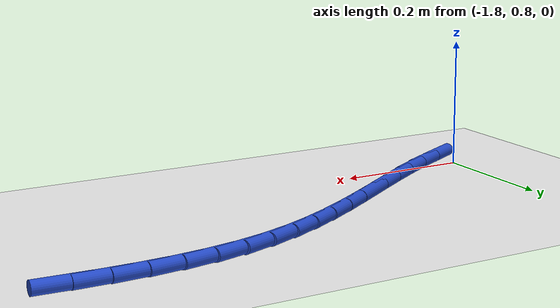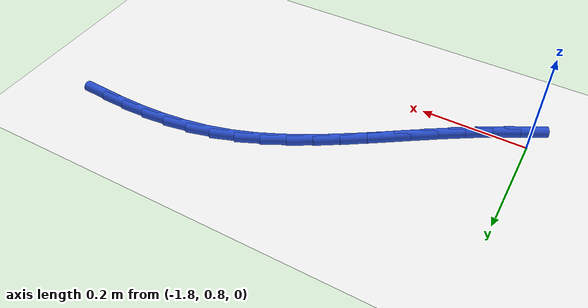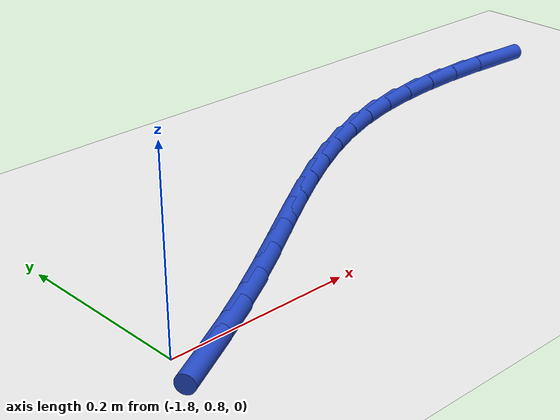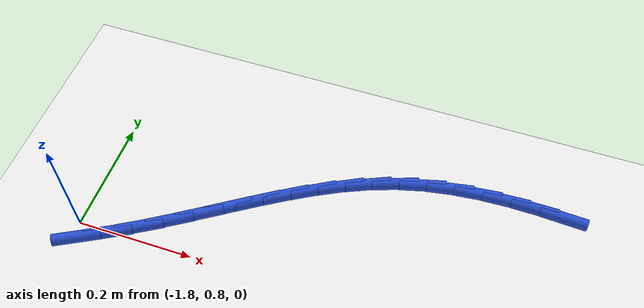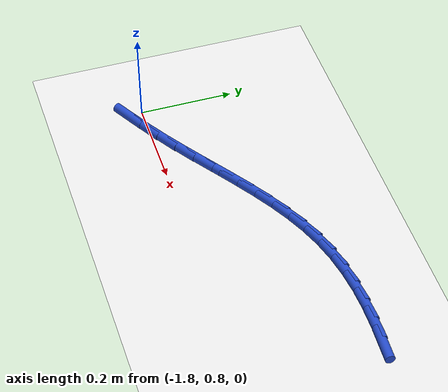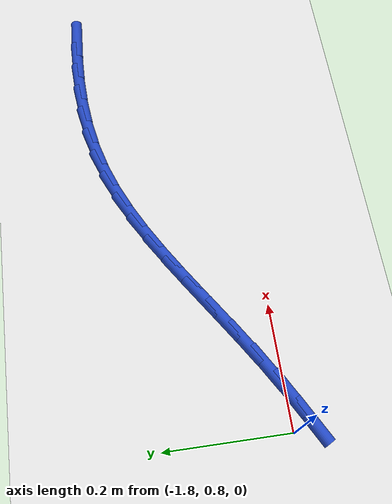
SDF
<sdf version="1.6">
 <world name="default">
  <model name="ground_plane">
   <static>1</static>
   <link name="link">
    <collision name="collision">
     <geometry><plane><normal>0 0 1</normal><size>100 100</size></plane></geometry>
     <surface><friction><ode><mu>100</mu><mu2>50</mu2></ode></friction></surface>
    </collision>
    <visual name="visual">
     <cast_shadows>0</cast_shadows>
     <geometry><plane><normal>0 0 1</normal><size>100 100</size></plane></geometry>
     <material>
      <script><uri>file://media/materials/scripts/gazebo.material</uri><name>Gazebo/WhiteGlow</name></script>
     </material>
    </visual>
   </link>
  </model>
  <model name="line">
   <link name="link_34">
    <pose>-1.040470278509321 1.062796352702786 0.01 0 1.57 -0.05168408826343095</pose>
    <collision name="collision">
     <geometry><cylinder><radius>0.01</radius><length>0.08</length></cylinder></geometry>
    </collision>
    <visual name="visual">
     <material>
      <script><name>Gazebo/Blue</name><uri>file://media/materials/scripts/gazebo.material</uri></script>
     </material>
     <geometry><cylinder><radius>0.01</radius><length>0.08</length></cylinder></geometry>
    </visual>
   </link>
   <link name="link_35">
    <pose>-1.0896073911539925 1.0653382232925686 0.01 0 1.57 -0.0069043084739173</pose>
    <collision name="collision">
     <geometry><cylinder><radius>0.01</radius><length>0.08</length></cylinder></geometry>
    </collision>
    <visual name="visual">
     <material>
      <script><name>Gazebo/Blue</name><uri>file://media/materials/scripts/gazebo.material</uri></script>
     </material>
     <geometry><cylinder><radius>0.01</radius><length>0.08</length></cylinder></geometry>
    </visual>
   </link>
   <link name="link_36">
    <pose>-1.1381539052245655 1.0656734087271 0.01 0 1.57 0.04650087163829302</pose>
    <collision name="collision">
     <geometry><cylinder><radius>0.01</radius><length>0.08</length></cylinder></geometry>
    </collision>
    <visual name="visual">
     <material>
      <script><name>Gazebo/Blue</name><uri>file://media/materials/scripts/gazebo.material</uri></script>
     </material>
     <geometry><cylinder><radius>0.01</radius><length>0.08</length></cylinder></geometry>
    </visual>
   </link>
   <link name="link_37">
    <pose>-1.1859617483899045 1.0634486985976215 0.01 0 1.57 0.10906454384270917</pose>
    <collision name="collision">
     <geometry><cylinder><radius>0.01</radius><length>0.08</length></cylinder></geometry>
    </collision>
    <visual name="visual">
     <material>
      <script><name>Gazebo/Blue</name><uri>file://media/materials/scripts/gazebo.material</uri></script>
     </material>
     <geometry><cylinder><radius>0.01</radius><length>0.08</length></cylinder></geometry>
    </visual>
   </link>
   <link name="link_38">
    <pose>-1.2328828483188747 1.0583108824953742 0.01 0 1.57 0.18114365162302634</pose>
    <collision name="collision">
     <geometry><cylinder><radius>0.01</radius><length>0.08</length></cylinder></geometry>
    </collision>
    <visual name="visual">
     <material>
      <script><name>Gazebo/Blue</name><uri>file://media/materials/scripts/gazebo.material</uri></script>
     </material>
     <geometry><cylinder><radius>0.01</radius><length>0.08</length></cylinder></geometry>
    </visual>
   </link>
   <link name="link_39">
    <pose>-1.2787691326803412 1.0499067500116002 0.01 0 1.57 0.26274653824986105</pose>
    <collision name="collision">
     <geometry><cylinder><radius>0.01</radius><length>0.08</length></cylinder></geometry>
    </collision>
    <visual name="visual">
     <material>
      <script><name>Gazebo/Blue</name><uri>file://media/materials/scripts/gazebo.material</uri></script>
     </material>
     <geometry><cylinder><radius>0.01</radius><length>0.08</length></cylinder></geometry>
    </visual>
   </link>
   <link name="link_40">
    <pose>-1.3234725404830396 1.0378831156690278 0.01 0 1.57 0.34911365693599217</pose>
    <collision name="collision">
     <geometry><cylinder><radius>0.01</radius><length>0.08</length></cylinder></geometry>
    </collision>
    <visual name="visual">
     <material>
      <script><name>Gazebo/Blue</name><uri>file://media/materials/scripts/gazebo.material</uri></script>
     </material>
     <geometry><cylinder><radius>0.01</radius><length>0.08</length></cylinder></geometry>
    </visual>
   </link>
   <link name="link_41">
    <pose>-1.3669260557082155 1.0220649769526504 0.01 0 1.57 0.42475879441147996</pose>
    <collision name="collision">
     <geometry><cylinder><radius>0.01</radius><length>0.08</length></cylinder></geometry>
    </collision>
    <visual name="visual">
     <material>
      <script><name>Gazebo/Blue</name><uri>file://media/materials/scripts/gazebo.material</uri></script>
     </material>
     <geometry><cylinder><radius>0.01</radius><length>0.08</length></cylinder></geometry>
    </visual>
   </link>
   <link name="link_42">
    <pose>-1.409337882827586 1.002882422579519 0.01 0 1.57 0.4858780325012394</pose>
    <collision name="collision">
     <geometry><cylinder><radius>0.01</radius><length>0.08</length></cylinder></geometry>
    </collision>
    <visual name="visual">
     <material>
      <script><name>Gazebo/Blue</name><uri>file://media/materials/scripts/gazebo.material</uri></script>
     </material>
     <geometry><cylinder><radius>0.01</radius><length>0.08</length></cylinder></geometry>
    </visual>
   </link>
   <link name="link_43">
    <pose>-1.450974593402284 0.9808938653387228 0.01 0 1.57 0.5325024177753516</pose>
    <collision name="collision">
     <geometry><cylinder><radius>0.01</radius><length>0.08</length></cylinder></geometry>
    </collision>
    <visual name="visual">
     <material>
      <script><name>Gazebo/Blue</name><uri>file://media/materials/scripts/gazebo.material</uri></script>
     </material>
     <geometry><cylinder><radius>0.01</radius><length>0.08</length></cylinder></geometry>
    </visual>
   </link>
   <link name="link_44">
    <pose>-1.492102758993443 0.956657718019353 0.01 0 1.57 0.5651057505240626</pose>
    <collision name="collision">
     <geometry><cylinder><radius>0.01</radius><length>0.08</length></cylinder></geometry>
    </collision>
    <visual name="visual">
     <material>
      <script><name>Gazebo/Blue</name><uri>file://media/materials/scripts/gazebo.material</uri></script>
     </material>
     <geometry><cylinder><radius>0.01</radius><length>0.08</length></cylinder></geometry>
    </visual>
   </link>
   <link name="link_45">
    <pose>-1.5329889511621957 0.9307323934105002 0.01 0 1.57 0.5843083403184012</pose>
    <collision name="collision">
     <geometry><cylinder><radius>0.01</radius><length>0.08</length></cylinder></geometry>
    </collision>
    <visual name="visual">
     <material>
      <script><name>Gazebo/Blue</name><uri>file://media/materials/scripts/gazebo.material</uri></script>
     </material>
     <geometry><cylinder><radius>0.01</radius><length>0.08</length></cylinder></geometry>
    </visual>
   </link>
   <link name="link_46">
    <pose>-1.5738997414696754 0.9036763043012541 0.01 0 1.57 0.5906940597236352</pose>
    <collision name="collision">
     <geometry><cylinder><radius>0.01</radius><length>0.08</length></cylinder></geometry>
    </collision>
    <visual name="visual">
     <material>
      <script><name>Gazebo/Blue</name><uri>file://media/materials/scripts/gazebo.material</uri></script>
     </material>
     <geometry><cylinder><radius>0.01</radius><length>0.08</length></cylinder></geometry>
    </visual>
   </link>
   <link name="link_47">
    <pose>-1.615101701477015 0.8760478634807065 0.01 0 1.57 0.5847225386798085</pose>
    <collision name="collision">
     <geometry><cylinder><radius>0.01</radius><length>0.08</length></cylinder></geometry>
    </collision>
    <visual name="visual">
     <material>
      <script><name>Gazebo/Blue</name><uri>file://media/materials/scripts/gazebo.material</uri></script>
     </material>
     <geometry><cylinder><radius>0.01</radius><length>0.08</length></cylinder></geometry>
    </visual>
   </link>
   <link name="link_48">
    <pose>-1.6568614027453479 0.8484054837379469 0.01 0 1.57 0.5667122993684152</pose>
    <collision name="collision">
     <geometry><cylinder><radius>0.01</radius><length>0.08</length></cylinder></geometry>
    </collision>
    <visual name="visual">
     <material>
      <script><name>Gazebo/Blue</name><uri>file://media/materials/scripts/gazebo.material</uri></script>
     </material>
     <geometry><cylinder><radius>0.01</radius><length>0.08</length></cylinder></geometry>
    </visual>
   </link>
   <link name="link_49">
    <pose>-1.6994454168358064 0.8213075778620663 0.01 0 1.57 0.5369062151635484</pose>
    <collision name="collision">
     <geometry><cylinder><radius>0.01</radius><length>0.08</length></cylinder></geometry>
    </collision>
    <visual name="visual">
     <material>
      <script><name>Gazebo/Blue</name><uri>file://media/materials/scripts/gazebo.material</uri></script>
     </material>
     <geometry><cylinder><radius>0.01</radius><length>0.08</length></cylinder></geometry>
    </visual>
   </link>
   <link name="link_50">
    <pose>-1.7431192681825576 0.7953115055704685 0.01 0 1.57 0.5054243779346007</pose>
    <collision name="collision">
     <geometry><cylinder><radius>0.01</radius><length>0.08</length></cylinder></geometry>
    </collision>
    <visual name="visual">
     <material>
      <script><name>Gazebo/Blue</name><uri>file://media/materials/scripts/gazebo.material</uri></script>
     </material>
     <geometry><cylinder><radius>0.01</radius><length>0.08</length></cylinder></geometry>
    </visual>
   </link>
   <link name="link_51">
    <pose>-1.7877759512402733 0.7705999816843135 0.01 0 1.57 0.4965302506560757</pose>
    <collision name="collision">
     <geometry><cylinder><radius>0.01</radius><length>0.08</length></cylinder></geometry>
    </collision>
    <visual name="visual">
     <material>
      <script><name>Gazebo/Blue</name><uri>file://media/materials/scripts/gazebo.material</uri></script>
     </material>
     <geometry><cylinder><radius>0.01</radius><length>0.08</length></cylinder></geometry>
    </visual>
   </link>
  </model>
 </world>
</sdf>
